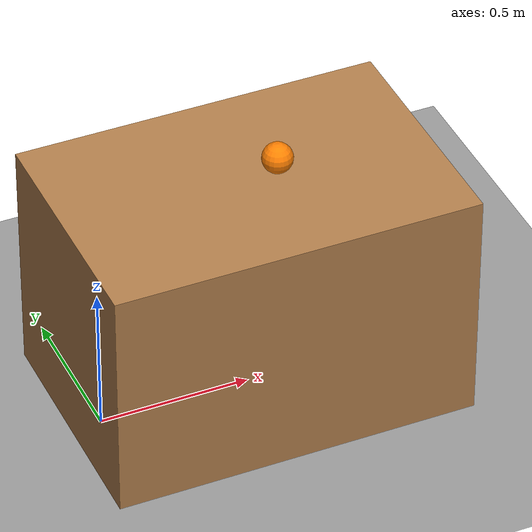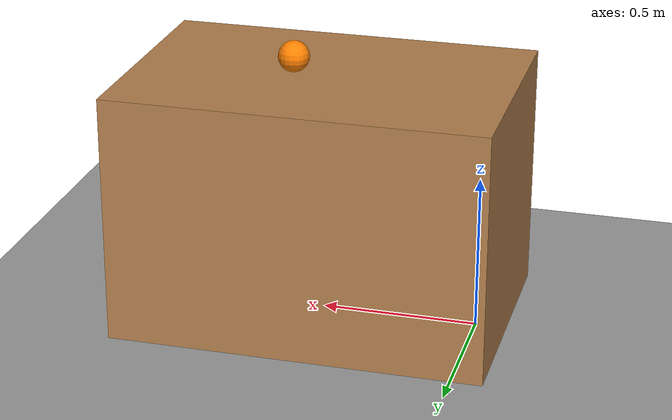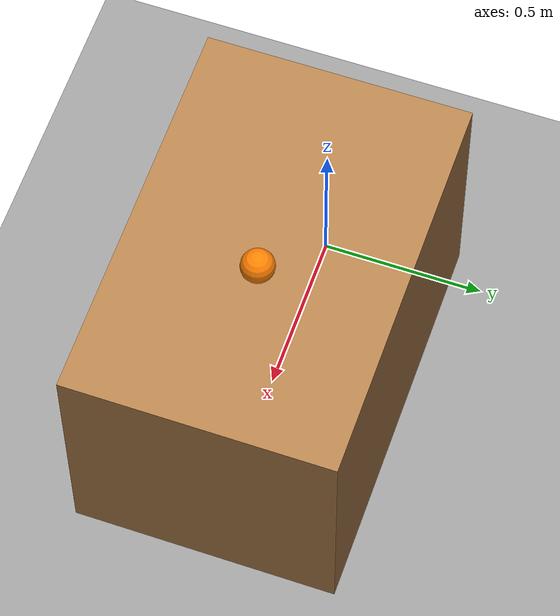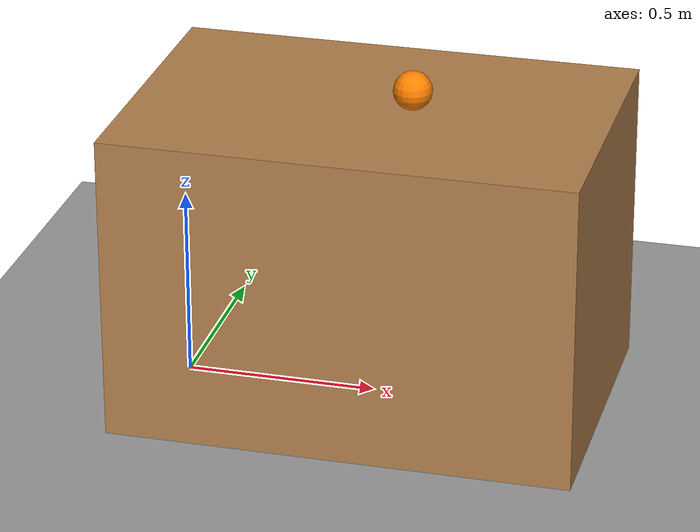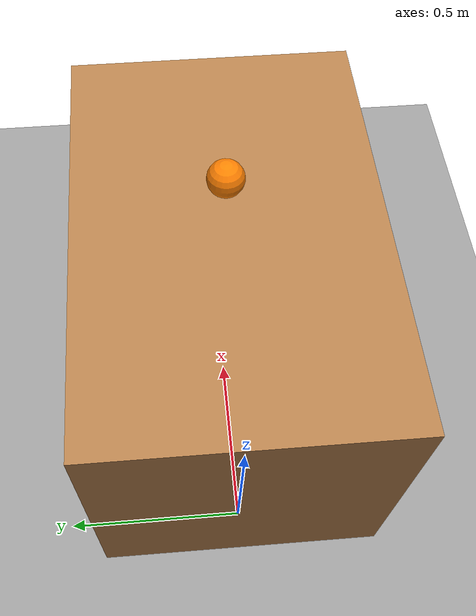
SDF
<?xml version="1.0" ?>
<sdf version="1.6">
  <world name="vs_arena">

    <!-- ── Física ──────────────────────────────────────────────────────── -->
    <physics type="ode">
      <real_time_update_rate>1000</real_time_update_rate>
      <max_step_size>0.001</max_step_size>
      <real_time_factor>1</real_time_factor>
    </physics>

    <!-- ── Plugins ──────────────────────────────────────────────────────── -->
    <plugin filename="gz-sim-physics-system" name="gz::sim::systems::Physics"/>
    <plugin filename="gz-sim-user-commands-system" name="gz::sim::systems::UserCommands"/>
    <plugin filename="gz-sim-scene-broadcaster-system" name="gz::sim::systems::SceneBroadcaster"/>
    <plugin filename="gz-sim-sensors-system" name="gz::sim::systems::Sensors">
      <render_engine>ogre2</render_engine>
    </plugin>
    <plugin filename="gz-sim-ros-system" name="gz::sim::systems::ROS2"/>

    <!-- ── Luz ambiente ─────────────────────────────────────────────────── -->
    <light type="directional" name="sun">
      <cast_shadows>true</cast_shadows>
      <pose>0 0 10 0 0 0</pose>
      <diffuse>0.9 0.9 0.9 1</diffuse>
      <specular>0.2 0.2 0.2 1</specular>
      <direction>-0.5 0.1 -0.9</direction>
    </light>

    <light type="point" name="worklight">
      <pose>0.5 0.0 2.0 0 0 0</pose>
      <diffuse>0.8 0.8 0.8 1</diffuse>
      <specular>0.1 0.1 0.1 1</specular>
      <attenuation>
        <range>5</range>
        <constant>0.3</constant>
        <linear>0.01</linear>
        <quadratic>0.001</quadratic>
      </attenuation>
    </light>

    <!-- ── Suelo ─────────────────────────────────────────────────────────── -->
    <model name="ground_plane">
      <static>true</static>
      <link name="link">
        <collision name="collision">
          <geometry><plane><normal>0 0 1</normal><size>20 20</size></plane></geometry>
        </collision>
        <visual name="visual">
          <geometry><plane><normal>0 0 1</normal><size>20 20</size></plane></geometry>
          <material>
            <ambient>0.6 0.6 0.6 1</ambient>
            <diffuse>0.6 0.6 0.6 1</diffuse>
          </material>
        </visual>
      </link>
    </model>

    <!-- ── Mesa de trabajo ──────────────────────────────────────────────── -->
    <model name="work_table">
      <static>true</static>
      <pose>0.5 0.0 0.0 0 0 0</pose>
      <link name="link">
        <collision name="col">
          <pose>0 0 0.4 0 0 0</pose>
          <geometry><box><size>1.2 0.8 0.8</size></box></geometry>
        </collision>
        <visual name="vis">
          <pose>0 0 0.4 0 0 0</pose>
          <geometry><box><size>1.2 0.8 0.8</size></box></geometry>
          <material>
            <ambient>0.6 0.4 0.2 1</ambient>
            <diffuse>0.7 0.5 0.3 1</diffuse>
          </material>
        </visual>
      </link>
    </model>

    <!-- ── Objeto objetivo: esfera naranja ──────────────────────────────── -->
    <model name="target_sphere">
      <pose>0.6 0.0 0.85 0 0 0</pose>
      <link name="link">
        <inertial>
          <mass>0.1</mass>
          <inertia><ixx>0.0001</ixx><iyy>0.0001</iyy><izz>0.0001</izz></inertia>
        </inertial>
        <collision name="col">
          <geometry><sphere><radius>0.05</radius></sphere></geometry>
        </collision>
        <visual name="vis">
          <geometry><sphere><radius>0.05</radius></sphere></geometry>
          <material>
            <ambient>1.0 0.5 0.0 1</ambient>
            <diffuse>1.0 0.5 0.0 1</diffuse>
            <specular>0.3 0.3 0.3 1</specular>
          </material>
        </visual>
      </link>
      <!-- Plugin para mover el objeto desde ROS2 -->
      <plugin filename="gz-sim-pose-publisher-system"
              name="gz::sim::systems::PosePublisher">
        <publish_link_pose>true</publish_link_pose>
        <use_pose_vector_msg>true</use_pose_vector_msg>
        <static_publisher>false</static_publisher>
      </plugin>
    </model>

  </world>
</sdf>
